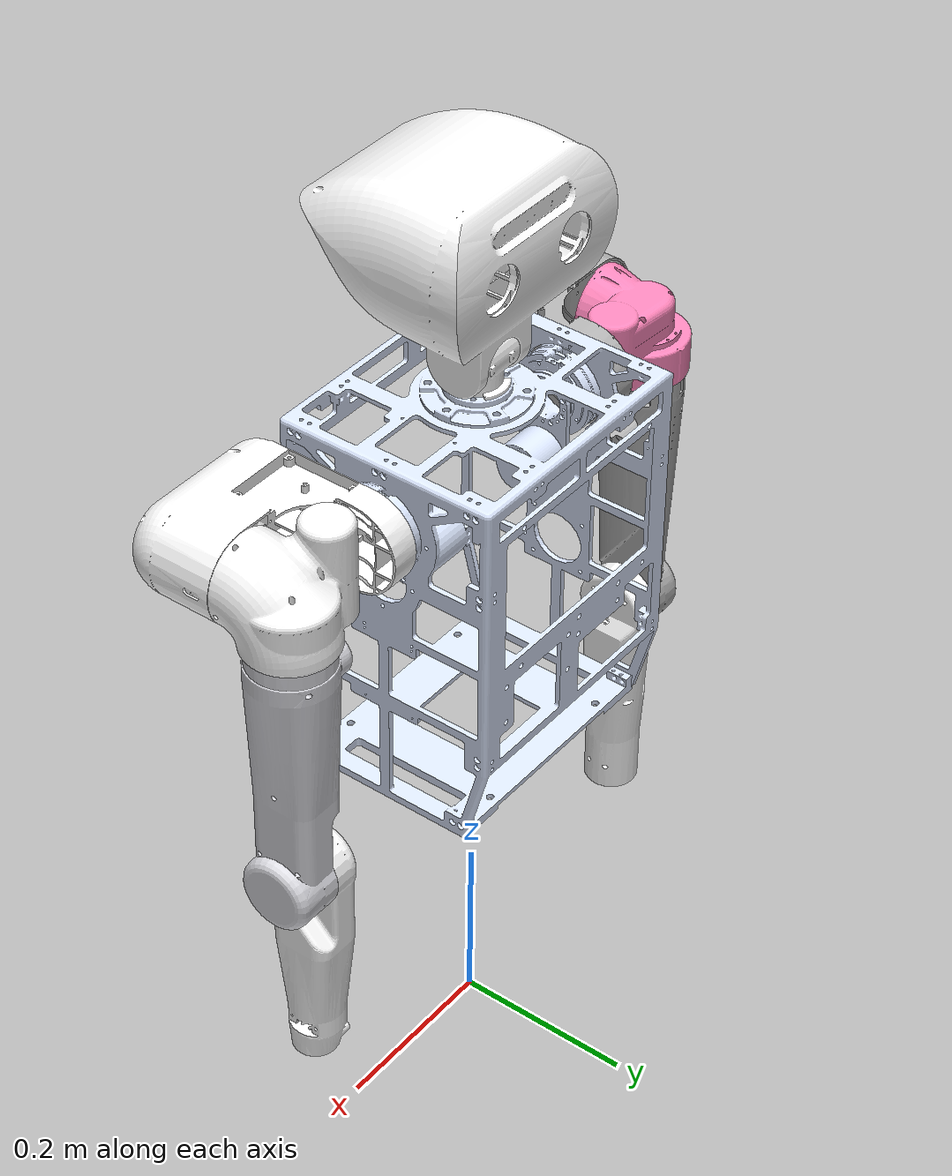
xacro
<?xml version="1.0"?>
<robot xmlns:xacro="http://www.ros.org/wiki/xacro" name="XC">
    <xacro:arg name="initial_positions_file" default="initial_positions.yaml" />

    <!-- Import XC urdf file -->
    <xacro:include filename="$(find xc_arm_description)/urdf/XC_urdf.urdf.xacro" />

    <!-- Import control_xacro -->
    <xacro:include filename="XC.ros2_control.xacro" />

    <xacro:XC_ros2_control right_arm_name="RightArmSystem" left_arm_name="LeftArmSystem" head_name="HeadGimbalSystem" initial_positions_file="$(arg initial_positions_file)"/>

</robot>

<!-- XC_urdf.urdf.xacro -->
<!-- XC assembly description with world frame and box collisions. -->
<robot xmlns:xacro="http://www.ros.org/wiki/xacro">
  <link name="world" />
  <joint name="world_to_base" type="fixed">
    <parent link="world" />
    <child link="base_link" />
    <origin xyz="0 0 0.800000" rpy="0 0 0" />
  </joint>
  <link name="base_link">
    <visual>
      <origin xyz="0 0 0" rpy="0 0 0" />
      <geometry>
        <mesh filename="package://xc_arm_description/meshes/base_link.STL" />
      </geometry>
      <material name="base_link_material">
        <color rgba="0.866666666666667 0.909803921568627 1 1"/>
      </material>
    </visual>
    <collision name="base_link_aabb">
      <origin xyz="0.000000000 0.000000000 -0.194049998" rpy="0 0 0" />
      <geometry>
        <box size="0.305999994 0.250000000 0.431899996" />
      </geometry>
    </collision>
    <inertial>
      <origin xyz="-0.000100441988354846 0.00741031642115803 -0.171614159635832" rpy="0 0 0" />
      <mass value="3.62780897988755" />
      <inertia ixx="0.0320425845966897" ixy="-7.47241167884531e-7" ixz="0.000186471787140796" iyy="0.0345617421172125" iyz="0.0000022264471840681" izz="0.0267107224668366" />
    </inertial>
  </link>
  <link name="Link1">
    <visual>
      <origin xyz="0 0 0" rpy="0 0 0" />
      <geometry>
        <mesh filename="package://xc_arm_description/meshes/Link1.STL" />
      </geometry>
      <material name="Link1_material">
        <color rgba="1 1 1 1"/>
      </material>
    </visual>
    <collision name="Link1_neck">
      <origin xyz="0 0.036750000 0" rpy="0 0 0" />
      <geometry>
        <cylinder radius="0.030000000" length="0.055000000" />
      </geometry>
    </collision>
    <inertial>
      <origin xyz="0.000357269207113205 0.0451512194227973 0.0000595331172054855" rpy="0 0 0" />
      <mass value="0.927753952581315" />
      <inertia ixx="0.0003435103264901" ixy="-0.00000697977884690008" ixz="2.05817744422798e-7" iyy="0.000239635675666703" iyz="2.73256896459218e-7" izz="0.000229776367964439" />
    </inertial>
  </link>
  <joint name="Joint1" type="revolute">
    <origin xyz="0 0 0.0089" rpy="1.5708 0 3.1416"/>
    <parent link="base_link"/>
    <child link="Link1"/>
    <axis xyz="0 1 0"/>
    <limit lower="-1.5" upper="1.5" effort="0" velocity="0"/>
  </joint>
  <link name="Link2">
    <visual>
      <origin xyz="0 0 0" rpy="0 3.141592653589793 3.141592653589793" />
      <geometry>
        <mesh filename="package://xc_arm_description/meshes/Link2.STL" />
      </geometry>
      <material name="Link2_material">
        <color rgba="1 1 1 1"/>
      </material>
    </visual>
    <collision name="Link2_head">
      <origin xyz="-0.038693268 -0.117083481 0.000000000" rpy="0 0 0" />
      <geometry>
        <box size="0.213910840 0.179166960 0.244000003" />
      </geometry>
    </collision>
    <inertial>
      <origin xyz="0.00556055799340952 0.10857443658997 0.000114735804145034" rpy="0 0 0" />
      <mass value="0.96566806473838" />
      <inertia ixx="0.00496238418704363" ixy="-0.0000373159196715549" ixz="0.00000469326258187401" iyy="0.00428035164261077" iyz="-0.0000157607490402429" izz="0.00221276603625578" />
    </inertial>
  </link>
  <joint name="Joint2" type="revolute">
    <origin xyz="0 0.0465 0" rpy="3.141592653589793 -1.5707999999999998 0"/>
    <parent link="Link1"/>
    <child link="Link2"/>
    <axis xyz="0 0 1"/>
    <limit lower="-1" upper="1.2" effort="0" velocity="0"/>
  </joint>
  <link name="right_arm_Link1">
    <visual>
      <origin xyz="0 0 0" rpy="0 0 0" />
      <geometry>
        <mesh filename="package://xc_arm_description/meshes/right_arm_Link1.STL" />
      </geometry>
      <material name="right_arm_Link1_material">
        <color rgba="1 1 1 1"/>
      </material>
    </visual>
    <collision name="right_arm_Link1_aabb">
      <origin xyz="0.057350000 0.000000000 -0.086999999" rpy="0 0 0" />
      <geometry>
        <box size="0.214700002 0.100000001 0.177999999" />
      </geometry>
    </collision>
    <inertial>
      <origin xyz="0.0753252263709532 0.00000379461068046594 -0.0702394393324593" rpy="0 0 0" />
      <mass value="0.37389911846827" />
      <inertia ixx="0.00138349521082352" ixy="2.6525695436461e-7" ixz="0.000405750059692785" iyy="0.00168708737369907" iyz="-1.17392074315144e-7" izz="0.00103925920437194" />
    </inertial>
  </link>
  <joint name="right_arm_Joint1" type="revolute">
    <origin xyz="0.155 0 -0.065" rpy="1.5708 0 -1.5708"/>
    <parent link="base_link"/>
    <child link="right_arm_Link1"/>
    <axis xyz="0 0 -1"/>
    <limit lower="-2.2" upper="2.2" effort="0" velocity="0"/>
  </joint>
  <link name="right_arm_Link2">
    <visual>
      <origin xyz="0 0 0" rpy="0 0 0" />
      <geometry>
        <mesh filename="package://xc_arm_description/meshes/right_arm_Link2.STL" />
      </geometry>
      <material name="right_arm_Link2_material">
        <color rgba="1 1 1 1"/>
      </material>
    </visual>
    <collision name="right_arm_Link2_aabb">
      <origin xyz="0.051997859 0.002499999 -0.017250132" rpy="0 0 0" />
      <geometry>
        <box size="0.103995718 0.113000002 0.134499736" />
      </geometry>
    </collision>
    <inertial>
      <origin xyz="0.0517507650307749 0.000986058207249188 -0.0205638511275084" rpy="0 0 0" />
      <mass value="0.0661514449414757" />
      <inertia ixx="0.000146920604983295" ixy="0.00000309963309555724" ixz="0.00000588921775158026" iyy="0.00018282529268874" iyz="0.00000506021794641585" izz="0.0000769343543962128" />
    </inertial>
  </link>
  <joint name="right_arm_Joint2" type="revolute">
    <origin xyz="0.054 0 -0.126" rpy="3.1416 0 3.1416"/>
    <parent link="right_arm_Link1"/>
    <child link="right_arm_Link2"/>
    <axis xyz="-1 0 0"/>
    <limit lower="-0.2" upper="2.2" effort="0" velocity="0"/>
  </joint>
  <link name="right_arm_Link3">
    <visual>
      <origin xyz="0 0 0" rpy="0 0 0" />
      <geometry>
        <mesh filename="package://xc_arm_description/meshes/right_arm_Link3.STL" />
      </geometry>
      <material name="right_arm_Link3_material">
        <color rgba="0.866666666666667 0.866666666666667 0.890196078431372 1"/>
      </material>
    </visual>
    <collision name="right_arm_Link3_aabb">
      <origin xyz="0.000000000 -0.148500003 0.008250000" rpy="0 0 0" />
      <geometry>
        <box size="0.093000263 0.341000006 0.109500002" />
      </geometry>
    </collision>
    <inertial>
      <origin xyz="0.000273175999117052 -0.129556479900641 -0.000397119607785545" rpy="0 0 0" />
      <mass value="0.230226380584259" />
      <inertia ixx="0.0023033175462381" ixy="0.00000652988037026034" ixz="2.49020331059283e-9" iyy="0.000209867602541522" iyz="-0.0000163278810501561" izz="0.00241302707603054" />
    </inertial>
  </link>
  <joint name="right_arm_Joint3" type="revolute">
    <origin xyz="0.054 -0.0725 0" rpy="3.1416 0 3.1416"/>
    <parent link="right_arm_Link2"/>
    <child link="right_arm_Link3"/>
    <axis xyz="0 -1 0"/>
    <limit lower="-3.2" upper="3.2" effort="0" velocity="0"/>
  </joint>
  <link name="right_arm_Link4">
    <visual>
      <origin xyz="0 0 0" rpy="0 0 0" />
      <geometry>
        <mesh filename="package://xc_arm_description/meshes/right_arm_Link4.STL" />
      </geometry>
      <material name="right_arm_Link4_material">
        <color rgba="1 1 1 1"/>
      </material>
    </visual>
    <collision name="right_arm_Link4_aabb">
      <origin xyz="-0.104503509 0.003999999 0.000024308" rpy="0 0 0" />
      <geometry>
        <box size="0.290992983 0.060000826 0.081943862" />
      </geometry>
    </collision>
    <inertial>
      <origin xyz="-0.0996283987379918 0.003453736329461 0.000750938855478048" rpy="0 0 0" />
      <mass value="0.187690052194019" />
      <inertia ixx="0.000118779138262872" ixy="-0.0000519459940721355" ixz="-0.00000837270172864726" iyy="0.00130343835657638" iyz="0.00000175172431736654" izz="0.00123535922803472" />
    </inertial>
  </link>
  <joint name="right_arm_Joint4" type="revolute">
    <origin xyz="0 -0.278 0.017" rpy="1.5708 0 1.5708"/>
    <parent link="right_arm_Link3"/>
    <child link="right_arm_Link4"/>
    <axis xyz="0 -1 0"/>
    <limit lower="0" upper="2.3" effort="0" velocity="0"/>
  </joint>
  <link name="right_arm_Link5">
    <visual>
      <origin xyz="0 0 0" rpy="0 0 0" />
      <geometry>
        <mesh filename="package://xc_arm_description/meshes/right_arm_Link5.STL" />
      </geometry>
      <material name="right_arm_Link5_material">
        <color rgba="0.866666666666667 0.866666666666667 0.890196078431372 1"/>
      </material>
    </visual>
    <collision name="right_arm_Link5_aabb">
      <origin xyz="0.000000000 0.014500000 0.000000000" rpy="0 0 0" />
      <geometry>
        <box size="0.033000000 0.028999999 0.033000000" />
      </geometry>
    </collision>
    <inertial>
      <origin xyz="3.18078896555107e-13 0.0073282301568236 0.0000635804661684469" rpy="0 0 0" />
      <mass value="0.0047372596428464" />
      <inertia ixx="4.89552691843467e-7" ixy="2.02807904846423e-18" ixz="2.0838856631146e-17" iyy="5.25055403170956e-7" iyz="4.97148287411649e-9" izz="4.99332597858747e-7" />
    </inertial>
  </link>
  <joint name="right_arm_Joint5" type="revolute">
    <origin xyz="-0.25 0 0" rpy="3.1416 0 1.5708"/>
    <parent link="right_arm_Link4"/>
    <child link="right_arm_Link5"/>
    <axis xyz="0 1 0"/>
    <limit lower="-3.2" upper="3.2" effort="0" velocity="0"/>
  </joint>
  <link name="left_arm_Link1">
    <visual>
      <origin xyz="0 0 0" rpy="0 0 0" />
      <geometry>
        <mesh filename="package://xc_arm_description/meshes/left_arm_Link1.STL" />
      </geometry>
      <material name="left_arm_Link1_material">
        <color rgba="0.698039215686274 0.698039215686274 0.698039215686274 1"/>
      </material>
    </visual>
    <collision name="left_arm_Link1_aabb">
      <origin xyz="0.057350000 0.000000000 -0.086999999" rpy="0 0 0" />
      <geometry>
        <box size="0.214700002 0.100000001 0.177999999" />
      </geometry>
    </collision>
    <inertial>
      <origin xyz="0.0732823930781522 3.5145753876642e-8 -0.0713256279422382" rpy="0 0 0" />
      <mass value="0.406435208870056" />
      <inertia ixx="0.00140903011524055" ixy="6.28834025175418e-8" ixz="0.000409866540105742" iyy="0.00170723992479015" iyz="-4.68150214759448e-8" izz="0.00107150848902139" />
    </inertial>
  </link>
  <joint name="left_arm_Joint1" type="revolute">
    <parent link="base_link"/>
    <child link="left_arm_Link1"/>
    <origin xyz="-0.155 0 -0.065" rpy="-1.5708 0 -1.5708"/>
    <axis xyz="0 0 1"/>
    <limit lower="-2.2" upper="2.2" effort="0" velocity="0"/>
  </joint>
  <link name="left_arm_Link2">
    <visual>
      <origin xyz="0 0 0" rpy="0 0 0" />
      <geometry>
        <mesh filename="package://xc_arm_description/meshes/left_arm_Link2.STL" />
      </geometry>
      <material name="left_arm_Link2_material">
        <color rgba="1 0.525490196078431 0.733333333333333 1"/>
      </material>
    </visual>
    <collision name="left_arm_Link2_aabb">
      <origin xyz="-0.017000001 -0.004000001 0.048250000" rpy="0 0 0" />
      <geometry>
        <box size="0.131000005 0.098000005 0.116500000" />
      </geometry>
    </collision>
    <inertial>
      <origin xyz="-0.00886280799817873 -0.000316319179243005 0.0381649724697074" rpy="0 0 0" />
      <mass value="0.15839189102538" />
      <inertia ixx="0.000155319663200108" ixy="-0.00000190829433878868" ixz="0.0000237130547247084" iyy="0.000247246282931212" iyz="0.00000149505005617686" izz="0.000156905553602197" />
    </inertial>
  </link>
  <joint name="left_arm_Joint2" type="revolute">
    <parent link="left_arm_Link1" />
    <child link="left_arm_Link2" />
    <origin xyz="0.056683 0 -0.126" rpy="3.1416 1.5708 0" />
    <axis xyz="0 0 1" />
    <limit lower="-0.2" upper="2.2" effort="0" velocity="0" />
  </joint>
  <link name="left_arm_Link3">
    <visual>
      <origin xyz="0 0 0" rpy="0 0 0" />
      <geometry>
        <mesh filename="package://xc_arm_description/meshes/left_arm_Link3.STL" />
      </geometry>
      <material name="left_arm_Link3_material">
        <color rgba="0.698039215686274 0.698039215686274 0.698039215686274 1"/>
      </material>
    </visual>
    <collision name="left_arm_Link3_aabb">
      <origin xyz="0.000000000 0.000108572 0.170499995" rpy="0 0 0" />
      <geometry>
        <box size="0.090000004 0.090041224 0.340999991" />
      </geometry>
    </collision>
    <inertial>
      <origin xyz="-0.00208760775771211 -0.000681707922896818 0.141338256383749" rpy="0 0 0" />
      <mass value="0.323180493756457" />
      <inertia ixx="0.00280731049985953" ixy="0.0000160287577015572" ixz="-0.0000387468656785862" iyy="0.00271882289116042" iyz="0.0000028565666087333" izz="0.000276372433220122" />
    </inertial>
  </link>
  <joint name="left_arm_Joint3" type="revolute">
    <parent link="left_arm_Link2"/>
    <child link="left_arm_Link3"/>
    <origin xyz="0 -0.0507 0.057" rpy="1.5708 0.19926 0"/>
    <axis xyz="0 0 1"/>
    <limit lower="-3.2" upper="3.2" effort="0" velocity="0"/>
  </joint>
  <link name="left_arm_Link4">
    <visual>
      <origin xyz="0 0 0" rpy="0 0 0" />
      <geometry>
        <mesh filename="package://xc_arm_description/meshes/left_arm_Link4.STL" />
      </geometry>
      <material name="left_arm_Link4_material">
        <color rgba="1 1 1 1"/>
      </material>
    </visual>
    <collision name="left_arm_Link4_aabb">
      <origin xyz="0.104499999 0.000000000 -0.006829725" rpy="0 0 0" />
      <geometry>
        <box size="0.291000001 0.081954852 0.065659447" />
      </geometry>
    </collision>
    <inertial>
      <origin xyz="0.098596548158028 -0.000530391745649016 -0.00508448815272322" rpy="0 0 0" />
      <mass value="0.182709783937269" />
      <inertia ixx="0.000105630384536482" ixy="-0.00000517398822297179" ixz="0.0000556845621712165" iyy="0.00124987114458788" iyz="-0.00000242731425431901" izz="0.00131115971208665" />
    </inertial>
  </link>
  <joint name="left_arm_Joint4" type="revolute">
    <parent link="left_arm_Link3"/>
    <child link="left_arm_Link4"/>
    <origin xyz="-0.024505 -0.0049487 0.3" rpy="0 -1.5708 0.19926"/>
    <axis xyz="0 0 1"/>
    <limit lower="0" upper="2.3" effort="0" velocity="0"/>
  </joint>
  <link name="left_arm_Link5">
    <visual>
      <origin xyz="0 0 0" rpy="0 0 0" />
      <geometry>
        <mesh filename="package://xc_arm_description/meshes/left_arm_Link5.STL" />
      </geometry>
      <material name="left_arm_Link5_material">
        <color rgba="0.866666666666667 0.866666666666667 0.890196078431372 1"/>
      </material>
    </visual>
    <collision name="left_arm_Link5_aabb">
      <origin xyz="0.000000000 0.014500000 0.000000000" rpy="0 0 0" />
      <geometry>
        <box size="0.033000000 0.028999999 0.033000000" />
      </geometry>
    </collision>
    <inertial>
      <origin xyz="3.12250225675825e-13 0.00732823015682116 0.0000635804661695997" rpy="0 0 0" />
      <mass value="0.00473725964284643" />
      <inertia ixx="4.8955269184347e-7" ixy="2.02834838694623e-18" ixz="2.08391393632672e-17" iyy="5.25055403170961e-7" iyz="4.97148287411644e-9" izz="4.99332597858749e-7" />
    </inertial>
  </link>
  <joint name="left_arm_Joint5" type="revolute">
    <origin xyz="0.25 0 -0.008" rpy="1.5708 -1.5708 0"/>
    <parent link="left_arm_Link4"/>
    <child link="left_arm_Link5"/>
    <axis xyz="0 1 0"/>
    <limit lower="-3.2" upper="3.2" effort="0" velocity="0"/>
  </joint>
</robot>
